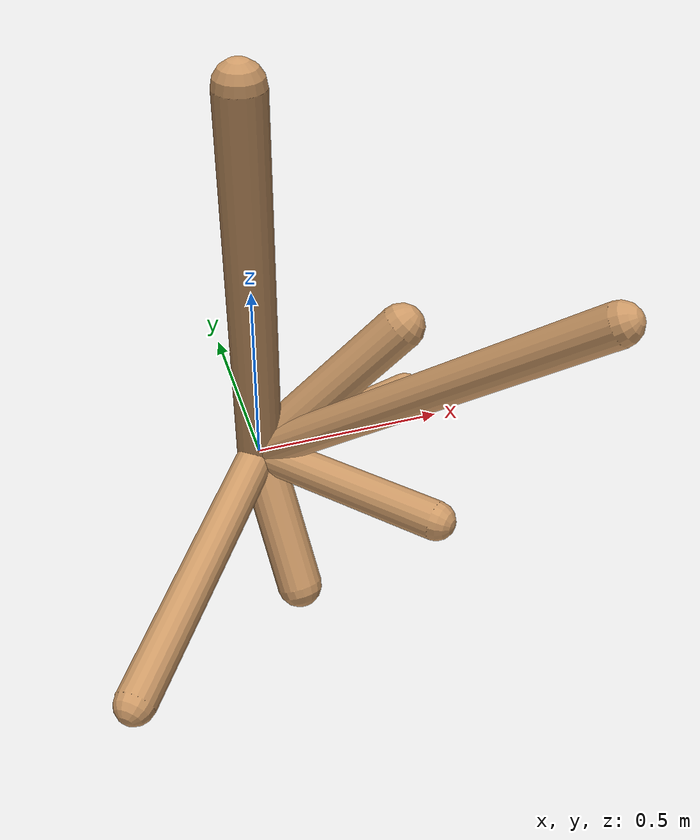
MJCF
<!--
                    joint_number: 6
                    -->
                    <mujoco model="randomrobot">
                        <compiler angle="degree" coordinate="global" inertiafromgeom="true"/>
                        <default>
                        <joint armature="0.01" damping=".1" limited="true"/>
                        <geom conaffinity="0" condim="3" contype="1" density="1000" friction="0.8 .1 .1" rgba="0.8 0.6 .4 1"/>
                        </default>
                        <option integrator="RK4" timestep="0.002"/>
                        <worldbody>
                    <body name='torso' pos='0.00 0.00 0.60'><geom fromto='0 0 0 0.00 0.00 1.00' name='torso_geom' size='0.06' type='capsule'/><inertial mass='0.3'/><body name='L0_D1' pos='0.00 0.00 0.57'><joint axis='0 1 0' name='L0_D1_joint' pos='0 0 0' range='116.67 168.04' type='hinge'/><geom fromto='0 0 0 0.34 -0.40 0.03' name='L0_D1_geom' size='0.05' type='capsule'/><inertial mass='0.3'/><body name='L1_D0' pos='0.18 -0.21 0.02'><joint axis='0 1 0' name='L1_D0_joint' pos='0 0 0' range='22.10 65.94' type='hinge'/><geom fromto='0 0 0 -0.44 -0.59 -0.12' name='L1_D0_geom' size='0.05' type='capsule'/><inertial mass='0.3'/></body><body name='L2_D0' pos='0.14 -0.16 0.01'><joint axis='1 0 0' name='L2_D0_joint' pos='0 0 0' range='120.82 127.98' type='hinge'/><geom fromto='0 0 0 0.04 -0.23 -0.30' name='L2_D0_geom' size='0.06' type='capsule'/><inertial mass='0.3'/></body></body><body name='L3_D1' pos='0.00 0.00 0.94'><joint axis='1 0 0' name='L3_D1_joint' pos='0 0 0' range='87.71 144.67' type='hinge'/><geom fromto='0 0 0 0.63 -0.54 0.65' name='L3_D1_geom' size='0.05' type='capsule'/><inertial mass='0.3'/></body><body name='L4_D1' pos='0.00 0.00 0.78'><joint axis='0 0 1' name='L4_D1_joint' pos='0 0 0' range='51.84 178.79' type='hinge'/><geom fromto='0 0 0 0.38 -0.06 0.17' name='L4_D1_geom' size='0.04' type='capsule'/><inertial mass='0.3'/><body name='L5_D0' pos='0.22 -0.03 0.10'><joint axis='0 1 0' name='L5_D0_joint' pos='0 0 0' range='34.49 130.81' type='hinge'/><geom fromto='0 0 0 0.36 -0.06 0.37' name='L5_D0_geom' size='0.06' type='capsule'/><inertial mass='0.3'/></body></body></body>
                        </worldbody>
                    </mujoco>
